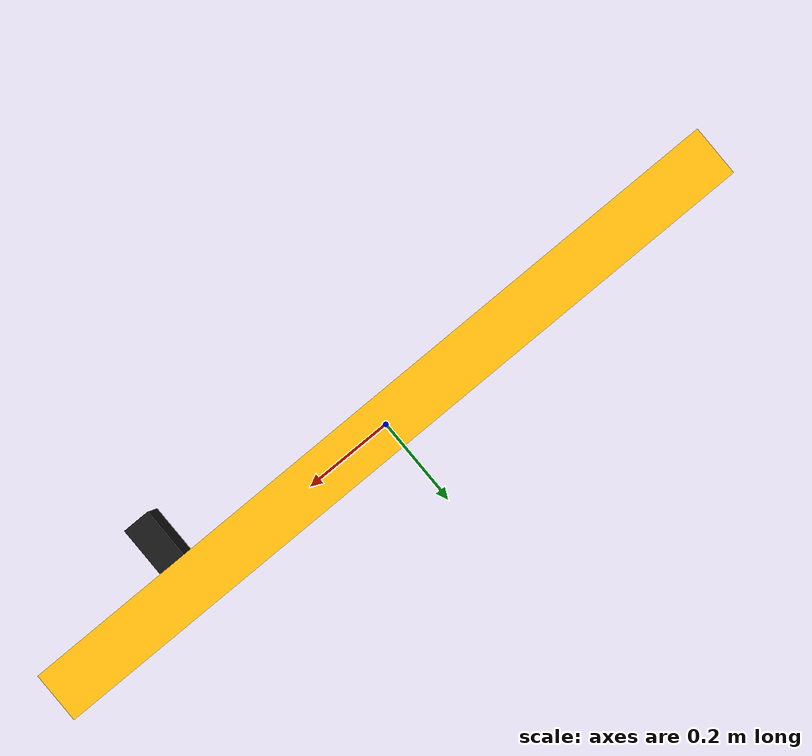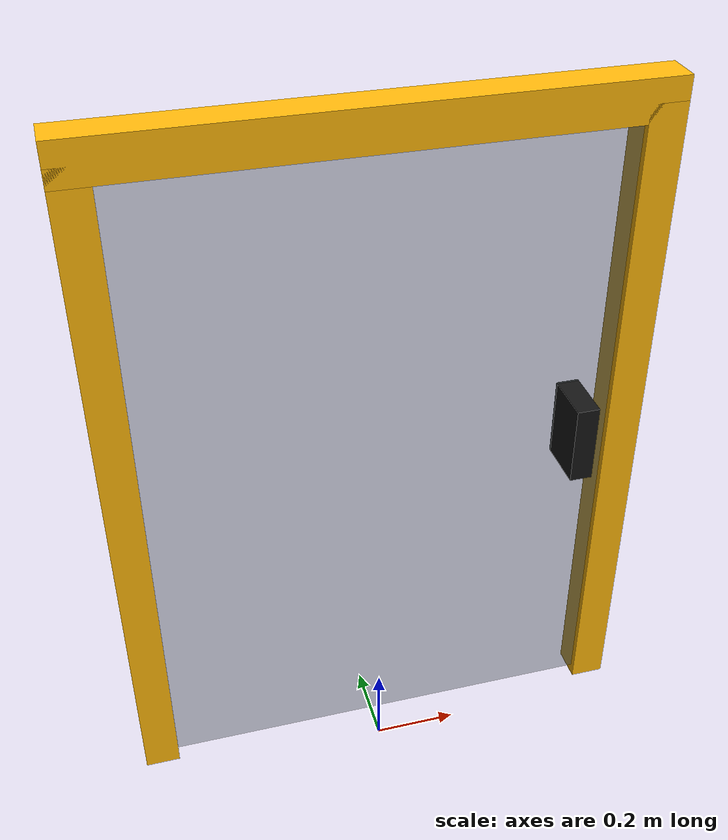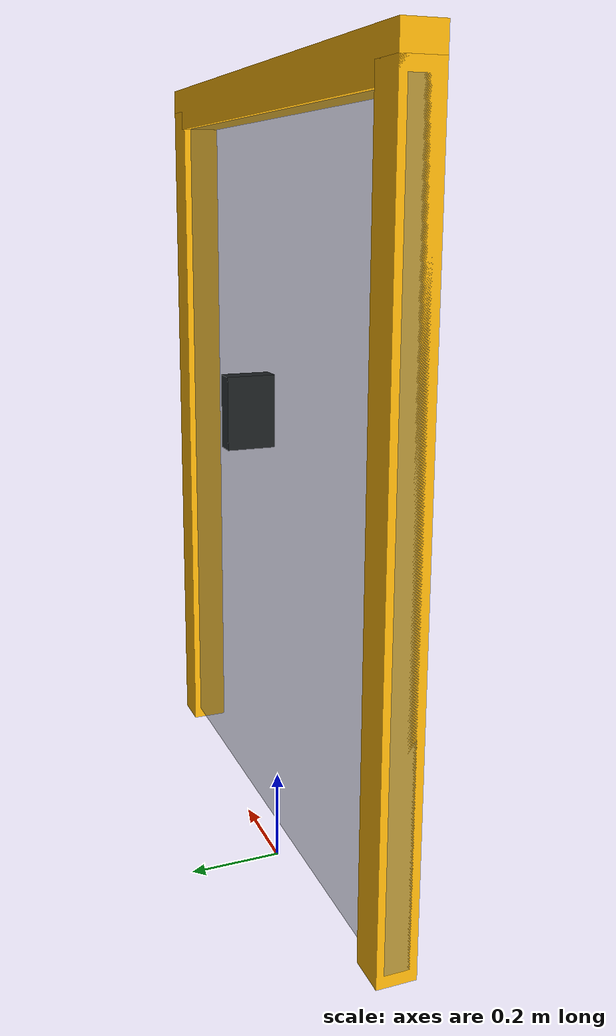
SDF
<?xml version="1.0"?>

<sdf version="1.10">

  <model name="safety_gate">

    <static>true</static>

    <link name="gate_link">

      <collision name="gate_panel_collision">
        <pose>0 0 0.88 0 0 0</pose>

        <geometry>
          <box>
            <size>1.20 0.05 1.50</size>
          </box>
        </geometry>
      </collision>

      <visual name="gate_panel_visual">
        <pose>0 0 0.88 0 0 0</pose>

        <geometry>
          <box>
            <size>1.20 0.05 1.50</size>
          </box>
        </geometry>

        <transparency>0.55</transparency>

        <material>
          <ambient>0.30 0.35 0.38 1</ambient>
          <diffuse>0.40 0.45 0.48 1</diffuse>
        </material>
      </visual>

      <collision name="left_frame_collision">
        <pose>-0.56 0 0.88 0 0 0</pose>

        <geometry>
          <box>
            <size>0.08 0.08 1.55</size>
          </box>
        </geometry>
      </collision>

      <visual name="left_frame_visual">
        <pose>-0.56 0 0.88 0 0 0</pose>

        <geometry>
          <box>
            <size>0.08 0.08 1.55</size>
          </box>
        </geometry>

        <material>
          <ambient>0.90 0.60 0.02 1</ambient>
          <diffuse>1.00 0.72 0.04 1</diffuse>
        </material>
      </visual>

      <collision name="right_frame_collision">
        <pose>0.56 0 0.88 0 0 0</pose>

        <geometry>
          <box>
            <size>0.08 0.08 1.55</size>
          </box>
        </geometry>
      </collision>

      <visual name="right_frame_visual">
        <pose>0.56 0 0.88 0 0 0</pose>

        <geometry>
          <box>
            <size>0.08 0.08 1.55</size>
          </box>
        </geometry>

        <material>
          <ambient>0.90 0.60 0.02 1</ambient>
          <diffuse>1.00 0.72 0.04 1</diffuse>
        </material>
      </visual>

      <collision name="top_frame_collision">
        <pose>0 0 1.66 0 0 0</pose>

        <geometry>
          <box>
            <size>1.20 0.08 0.09</size>
          </box>
        </geometry>
      </collision>

      <visual name="top_frame_visual">
        <pose>0 0 1.66 0 0 0</pose>

        <geometry>
          <box>
            <size>1.20 0.08 0.09</size>
          </box>
        </geometry>

        <material>
          <ambient>0.90 0.60 0.02 1</ambient>
          <diffuse>1.00 0.72 0.04 1</diffuse>
        </material>
      </visual>

      <collision name="handle_collision">
        <pose>0.42 -0.08 0.95 0 0 0</pose>

        <geometry>
          <box>
            <size>0.05 0.12 0.18</size>
          </box>
        </geometry>
      </collision>

      <visual name="handle_visual">
        <pose>0.42 -0.08 0.95 0 0 0</pose>

        <geometry>
          <box>
            <size>0.05 0.12 0.18</size>
          </box>
        </geometry>

        <material>
          <ambient>0.03 0.03 0.03 1</ambient>
          <diffuse>0.08 0.08 0.08 1</diffuse>
        </material>
      </visual>

      <visual name="pnp1_target_visual">
        <pose>0.602 -0.021 1.45 0 0 0</pose>

        <geometry>
          <box>
            <size>0.004 0.008 0.040</size>
          </box>
        </geometry>

        <material>
          <ambient>0.48 0.50 0.53 1</ambient>
          <diffuse>0.78 0.81 0.84 1</diffuse>
          <specular>0.90 0.90 0.90 1</specular>
        </material>
      </visual>

      <visual name="pnp2_target_visual">
        <pose>0.602 -0.007 1.10 0 0 0</pose>

        <geometry>
          <box>
            <size>0.004 0.008 0.040</size>
          </box>
        </geometry>

        <material>
          <ambient>0.48 0.50 0.53 1</ambient>
          <diffuse>0.78 0.81 0.84 1</diffuse>
          <specular>0.90 0.90 0.90 1</specular>
        </material>
      </visual>

      <visual name="pnp3_target_visual">
        <pose>0.602 0.007 0.70 0 0 0</pose>

        <geometry>
          <box>
            <size>0.004 0.008 0.040</size>
          </box>
        </geometry>

        <material>
          <ambient>0.48 0.50 0.53 1</ambient>
          <diffuse>0.78 0.81 0.84 1</diffuse>
          <specular>0.90 0.90 0.90 1</specular>
        </material>
      </visual>

      <visual name="pnp4_target_visual">
        <pose>0.602 0.021 0.30 0 0 0</pose>

        <geometry>
          <box>
            <size>0.004 0.008 0.040</size>
          </box>
        </geometry>

        <material>
          <ambient>0.48 0.50 0.53 1</ambient>
          <diffuse>0.78 0.81 0.84 1</diffuse>
          <specular>0.90 0.90 0.90 1</specular>
        </material>
      </visual>

    </link>

  </model>

</sdf>
